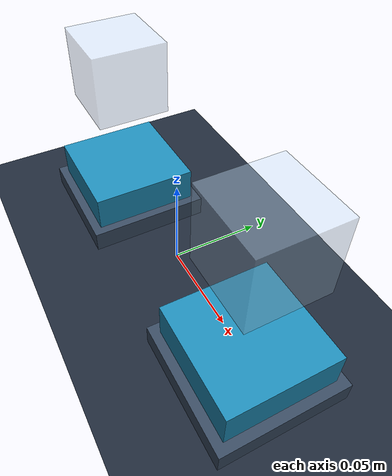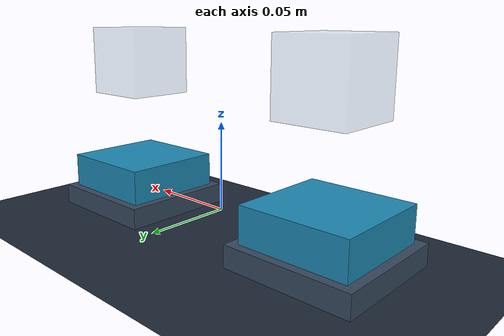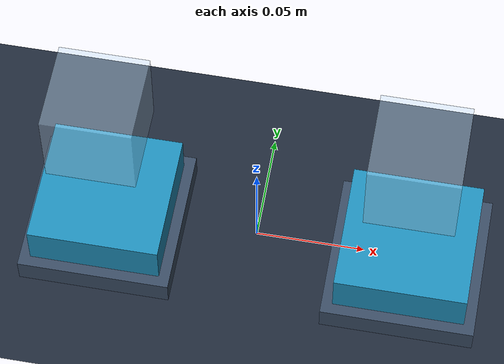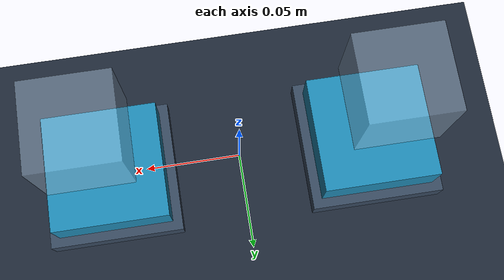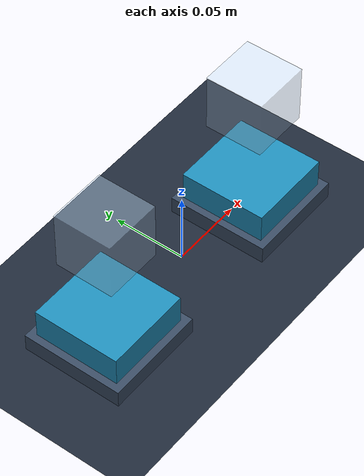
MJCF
<?xml version="1.0" encoding="utf-8"?>
<!-- Complete MJCF-compatible teaching fixture with geometry and collision. -->
<mujoco model="touch_grid_package_demo">
  <option timestep="0.002" integrator="Euler" gravity="0 0 -9.81" />
  <statistic center="0 0 .025" extent="0.24" />
  <visual>
    <global offwidth="1200" offheight="800" />
    <headlight ambient=".45 .45 .45" diffuse=".65 .65 .65" />
  </visual>
  <worldbody>
    <light pos="0 -.2 .5" dir="0 0 -1" />
    <geom name="floor_visual" type="plane" size="2 2 .01" pos="0 0 -.014" rgba=".12 .16 .22 1" contype="0" conaffinity="0" mass="0" />
    <body name="left_finger_mount" pos="-0.07 0 0">
      <geom name="left_finger_mount_visual" type="box" size=".035 .035 .006" pos="0 0 -.006" rgba=".22 .29 .38 1" contype="0" conaffinity="0" mass="0" />
      <body name="left_finger__sensor_root" pos="0 0 0" quat="1 0 0 0">
        <site name="left_finger__sensor_base" pos="0 0 0" size="0.001" group="4" />
        <body name="left_finger__force_f1" pos="0 0 0.01">
          <geom name="left_finger__force_f1_shape" type="box" size="0.03 0.03 0.01" material="left_finger__force_f1_material" group="1" />
        </body>
        <site name="left_finger__surface_frame" pos="0 0 0.02" size="0.001" group="4" />
      </body>
    </body>
    <!-- Independent 0.1 kg and 0.2 kg falling loads. -->
    <body name="left_finger_load" pos="-0.07 0 .08">
      <freejoint />
      <geom name="left_finger_load_collision" type="box" size=".02 .02 .02" mass="0.1" rgba=".8 .8 .8 0" group="3" />
      <geom name="left_finger_load_visual" type="box" size=".02 .02 .02" mass="0" contype="0" conaffinity="0" rgba=".74 .85 .95 .38" />
    </body>
    <body name="right_finger_mount" pos="0.07 0 0">
      <geom name="right_finger_mount_visual" type="box" size=".035 .035 .006" pos="0 0 -.006" rgba=".22 .29 .38 1" contype="0" conaffinity="0" mass="0" />
      <body name="right_finger__sensor_root" pos="0 0 0" quat="1 0 0 0">
        <site name="right_finger__sensor_base" pos="0 0 0" size="0.001" group="4" />
        <body name="right_finger__force_f1" pos="0 0 0.01">
          <geom name="right_finger__force_f1_shape" type="box" size="0.03 0.03 0.01" material="right_finger__force_f1_material" group="1" />
        </body>
        <site name="right_finger__surface_frame" pos="0 0 0.02" size="0.001" group="4" />
      </body>
    </body>
    <body name="right_finger_load" pos="0.07 0 .08">
      <freejoint />
      <geom name="right_finger_load_collision" type="box" size=".02 .02 .02" mass="0.2" rgba=".8 .8 .8 0" group="3" />
      <geom name="right_finger_load_visual" type="box" size=".02 .02 .02" mass="0" contype="0" conaffinity="0" rgba=".74 .85 .95 .38" />
    </body>
  </worldbody>
  <asset>
    <material name="left_finger__force_f1_material" rgba="0.12 0.55 0.72 1" specular="0.3" shininess="0.3" />
    <material name="right_finger__force_f1_material" rgba="0.12 0.55 0.72 1" specular="0.3" shininess="0.3" />
  </asset>
  <!-- Exact mount sites anchor the two model namespaces; Orca validates their internal objects. -->
  <custom>
    <text name="orca.sensor.v1/left_finger/plugin" data="com.orca.examples.touch_grid" />
    <tuple name="orca.sensor.v1/left_finger/object/force_f1">
      <element objtype="body" objname="left_finger__force_f1" />
    </tuple>
    <tuple name="orca.sensor.v1/left_finger/object/surface_frame">
      <element objtype="site" objname="left_finger__surface_frame" />
    </tuple>
    <text name="orca.sensor.v1/left_finger/seed" data="0" />
    <text name="orca.sensor.v1/right_finger/plugin" data="com.orca.examples.touch_grid" />
    <tuple name="orca.sensor.v1/right_finger/object/force_f1">
      <element objtype="body" objname="right_finger__force_f1" />
    </tuple>
    <tuple name="orca.sensor.v1/right_finger/object/surface_frame">
      <element objtype="site" objname="right_finger__surface_frame" />
    </tuple>
    <text name="orca.sensor.v1/right_finger/seed" data="0" />
  </custom>
</mujoco>
